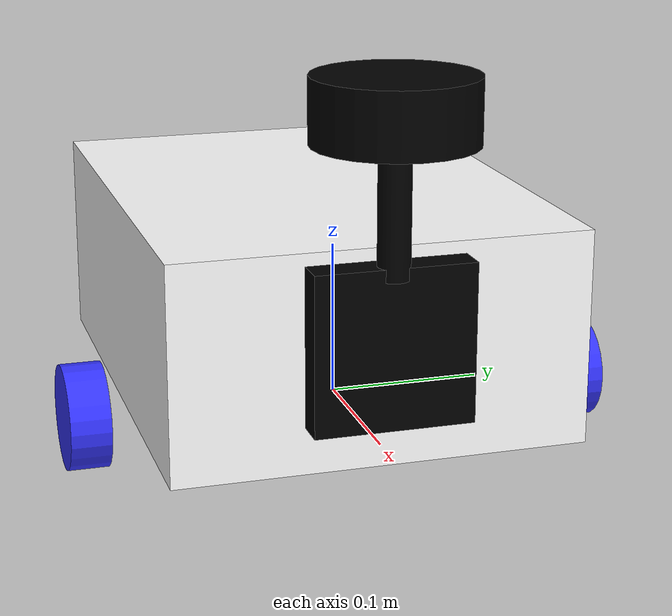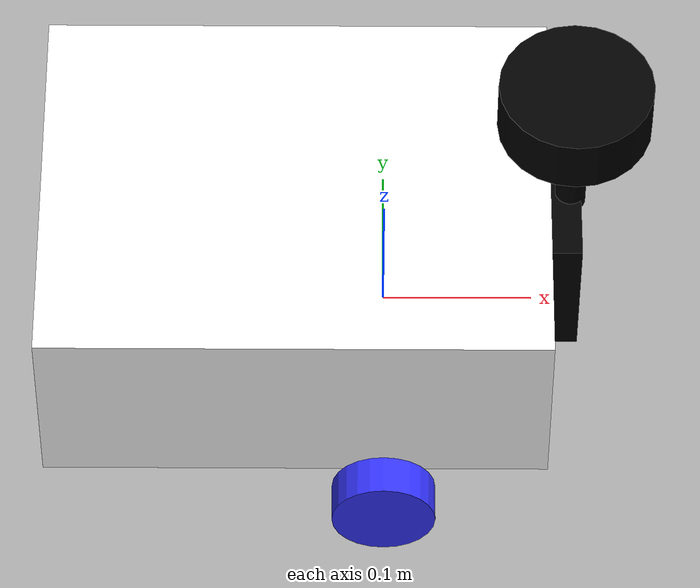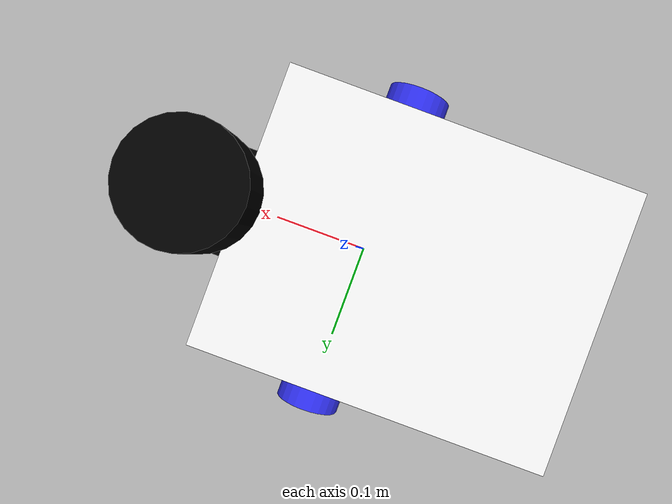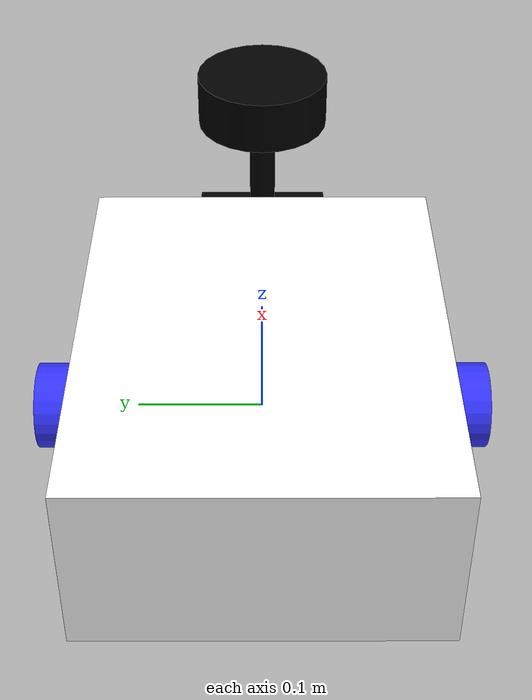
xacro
<?xml version="1.0"?>
<robot xmlns:xacro="http://www.ros.org/wiki/xacro" name ="my_bot" >

    <xacro:arg name="robot_namespace" default=""/>
    <xacro:arg name="wheel_odom_topic" default="odom" />
    <xacro:arg name="camera_enabled" default="false" />
    <xacro:arg name="stereo_camera_enabled" default="false" />
    <xacro:arg name="two_d_lidar_enabled" default="false" />
    <xacro:arg name="publish_wheel_odom_tf" default="true" />
    <xacro:arg name="conveyor_enabled" default="false"/>
    <xacro:arg name="ground_truth_frame" default="map"/>
    <xacro:arg name="sim_gazebo" default="false" />
    <xacro:arg name="sim_gz" default="false" />
    <xacro:arg name="odometry_source" default="world" />

    <xacro:property name="two_d_lidar_update_rate" value="30"/>
    <xacro:property name="two_d_lidar_sample_size" value="361"/>
    <xacro:property name="two_d_lidar_min_angle" value="0"/>
    <xacro:property name="two_d_lidar_max_angle" value="360"/>
    <xacro:property name="two_d_lidar_min_range" value="0.55"/>
    <xacro:property name="two_d_lidar_max_range" value="16"/>

    <xacro:property name="odometry_source" value="$(arg odometry_source)"/>

    <xacro:property name="chassis_length" value="0.335"/>
    <xacro:property name="chassis_width" value="0.265"/>
    <xacro:property name="chassis_height" value="0.138"/>
    <xacro:property name="chassis_mass" value="1.0"/>
    <xacro:property name="wheel_radius" value="0.034"/>
    <xacro:property name="wheel_thickness" value="0.026"/>
    <xacro:property name="wheel_mass" value="0.05"/>
    <xacro:property name="wheel_offset_x" value="0.226"/>
    <xacro:property name="wheel_offset_y" value="0.166"/>
    <xacro:property name="wheel_offset_z" value="0.01"/>
    <xacro:property name="caster_wheel_radius" value="0.01"/>
    <xacro:property name="caster_wheel_mass" value="0.01"/>
    <xacro:property name="caster_wheel_offset_x" value="0.075"/>
    <xacro:property name="caster_wheel_offset_z" value="${wheel_offset_z - wheel_radius + caster_wheel_radius}"/>

    <material name="white">
        <color rgba="1 1 1 1" />
    </material>

    <material name="orange">
        <color rgba="1 0.3 0.1 1"/>
    </material>

    <material name="blue">
        <color rgba="0.2 0.2 1 1"/>
    </material>

    <material name="black">
        <color rgba="0 0 0 1"/>
    </material>

    <material name="red">
        <color rgba="1 0 0 1"/>
    </material>

    <xacro:macro name="inertial_sphere" params="mass radius *origin">
        <inertial>
            <xacro:insert_block name="origin"/>
            <mass value="${mass}" />
            <inertia ixx="${(2/5) * mass * (radius*radius)}" ixy="0.0" ixz="0.0"
                    iyy="${(2/5) * mass * (radius*radius)}" iyz="0.0"
                    izz="${(2/5) * mass * (radius*radius)}" />
        </inertial>
    </xacro:macro>

    <xacro:macro name="inertial_box" params="mass x y z *origin">
        <inertial>
            <xacro:insert_block name="origin"/>
            <mass value="${mass}" />
            <inertia ixx="${(1/12) * mass * (y*y+z*z)}" ixy="0.0" ixz="0.0"
                    iyy="${(1/12) * mass * (x*x+z*z)}" iyz="0.0"
                    izz="${(1/12) * mass * (x*x+y*y)}" />
        </inertial>
    </xacro:macro>

    <xacro:macro name="inertial_cylinder" params="mass length radius *origin">
        <inertial>
            <xacro:insert_block name="origin"/>
            <mass value="${mass}" />
            <inertia ixx="${(1/12) * mass * (3*radius*radius + length*length)}" ixy="0.0" ixz="0.0"
                    iyy="${(1/12) * mass * (3*radius*radius + length*length)}" iyz="0.0"
                    izz="${(1/2) * mass * (radius*radius)}" />
        </inertial>
    </xacro:macro>

    <link name="base_footprint"/>

    <link name="base_link"/>

    <joint name="base_footprint_joint" type="fixed">
        <parent link="base_footprint"/>
        <child link="base_link"/>
        <origin xyz="0 0 0" rpy="0 0 0"/>
    </joint>

    <!-- CHASSIS LINK -->

    <joint name="chassis_joint" type="fixed">
        <parent link="base_link"/>
        <child link="chassis"/>
        <origin xyz="${-wheel_offset_x} 0 ${-wheel_offset_z}"/>
    </joint>

    <link name="chassis">
        <visual>
            <origin xyz="${chassis_length/2} 0 ${chassis_height/2}"/>
            <geometry>
                <box size="${chassis_length} ${chassis_width} ${chassis_height}"/>
            </geometry>
            <material name="white"/>
        </visual>
        <collision>
            <origin xyz="${chassis_length/2} 0 ${chassis_height/2}"/>
            <geometry>
                <box size="${chassis_length} ${chassis_width} ${chassis_height}"/>
            </geometry>
        </collision>
        <xacro:inertial_box mass="0.5" x="${chassis_length}" y="${chassis_width}" z="${chassis_height}">
            <origin xyz="${chassis_length/2} 0 ${chassis_height/2}" rpy="0 0 0"/>
        </xacro:inertial_box>
    </link>

    <gazebo reference="chassis">
        <material>Gazebo/White</material>
    </gazebo>

    <!-- LEFT WHEEL LINK -->

    <joint name="left_wheel_joint" type="continuous">
        <parent link="base_link"/>
        <child link="left_wheel"/>
        <origin xyz="0 ${wheel_offset_y} 0" rpy="-${pi/2} 0 0" />
        <axis xyz="0 0 1"/>
    </joint>

    <link name="left_wheel">
        <visual>
            <geometry>
                <cylinder radius="${wheel_radius}" length="${wheel_thickness}"/>
            </geometry>
            <material name="blue"/>
        </visual>
        <collision>
            <geometry>
                <sphere radius="${wheel_radius}"/>
            </geometry>
        </collision>
        <xacro:inertial_cylinder mass="${wheel_mass}" length="${wheel_thickness}" radius="${wheel_radius}">
            <origin xyz="0 0 0" rpy="0 0 0"/>
        </xacro:inertial_cylinder>
        <gazebo>
            <plugin filename="ignition-gazebo-joint-state-publisher-system" name="ignition::gazebo::systems::JointStatePublisher">
                <topic>/joint_states</topic>
                <joint_name>left_wheel_joint</joint_name>
            </plugin>
        </gazebo>
    </link>

    <gazebo reference="left_wheel">
        <material>Gazebo/Blue</material>
    </gazebo>

    <!-- RIGHT WHEEL LINK -->

    <joint name="right_wheel_joint" type="continuous">
        <parent link="base_link"/>
        <child link="right_wheel"/>
        <origin xyz="0 ${-wheel_offset_y} 0" rpy="${pi/2} 0 0" />
        <axis xyz="0 0 -1"/>
    </joint>

    <link name="right_wheel">
        <visual>
            <geometry>
                <cylinder radius="${wheel_radius}" length="${wheel_thickness}"/>
            </geometry>
            <material name="blue"/>
        </visual>
        <collision>
            <geometry>
                <sphere radius="${wheel_radius}"/>
            </geometry>
        </collision>
        <xacro:inertial_cylinder mass="${wheel_mass}" length="${wheel_thickness}" radius="${wheel_radius}">
            <origin xyz="0 0 0" rpy="0 0 0"/>
        </xacro:inertial_cylinder>
        <gazebo>
            <plugin filename="ignition-gazebo-joint-state-publisher-system" name="ignition::gazebo::systems::JointStatePublisher">
                <topic>/joint_states</topic>
                <joint_name>right_wheel_joint</joint_name>
            </plugin>
        </gazebo>
    </link>

    <gazebo reference="right_wheel">
        <material>Gazebo/Blue</material>
    </gazebo>

    <!-- CASTER WHEEL LINK -->

    <joint name="caster_wheel_joint" type="fixed">
        <parent link="chassis"/>
        <child link="caster_wheel"/>
        <origin xyz="${caster_wheel_offset_x} 0 ${caster_wheel_offset_z}"/>
    </joint>

    <link name="caster_wheel">
        <visual>
            <geometry>
                <sphere radius="${caster_wheel_radius}"/>
            </geometry>
            <material name="white"/>
        </visual>
        <collision>
            <geometry>
                <sphere radius="${caster_wheel_radius}"/>
            </geometry>
        </collision>
        <xacro:inertial_sphere mass="${caster_wheel_mass}" radius="${caster_wheel_radius}">
            <origin xyz="0 0 0" rpy="0 0 0"/>
        </xacro:inertial_sphere>
    </link>

    <gazebo reference="caster_wheel">
        <material>Gazebo/White</material>
        <mu1 value="0.001"/>
        <mu2 value="0.001"/>
    </gazebo>

    <gazebo>
        <plugin filename="ignition-gazebo-sensors-system" name="ignition::gazebo::systems::Sensors">
            <render_engine>ogre2</render_engine>
        </plugin>

        <plugin filename="ignition-gazebo-imu-system" name="ignition::gazebo::systems::Imu">
        </plugin>

        <plugin filename="ignition-gazebo-joint-state-publisher-system" name="ignition::gazebo::systems::JointStatePublisher">
        </plugin>

        <!-- ........................... DIFFERENTIAL DRIVE PLUGIN ................................... -->

        <plugin filename="ignition-gazebo-diff-drive-system" name="ignition::gazebo::systems::DiffDrive">
            <left_joint>left_wheel_joint</left_joint>
            <right_joint>right_wheel_joint</right_joint>
            <wheel_separation>0.35</wheel_separation>
            <wheel_radius>0.1</wheel_radius>
            <odom_publish_frequency>30</odom_publish_frequency>
            <topic>/cmd_vel</topic>
            <xacro:if value="${odometry_source == 'encoders'}">
                <odom_topic>$(arg wheel_odom_topic)</odom_topic>
                <tf_topic>/tf</tf_topic>
            </xacro:if>
            <frame_id>odom</frame_id>
            <child_frame_id>base_footprint</child_frame_id>
        </plugin>
    </gazebo>

    <xacro:if value="${odometry_source == 'world'}">
    <gazebo>
        <plugin filename="libignition-gazebo6-odometry-publisher-system"
            name="ignition::gazebo::systems::OdometryPublisher">
            <odom_frame>odom</odom_frame>
            <robot_base_frame>base_footprint</robot_base_frame>
            <odom_topic>$(arg wheel_odom_topic)</odom_topic>
            <tf_topic>/tf</tf_topic>
            <dimensions>2</dimensions>
            <odom_publish_frequency>10</odom_publish_frequency>
        </plugin>
    </gazebo>
    </xacro:if>

    <link name="two_d_lidar">
        <visual>
            <geometry>
                <cylinder radius="0.05" length="0.04"/>
            </geometry>
            <material name="black"/>
        </visual>
        <visual>
            <origin xyz="0 0 -0.05"/>
            <geometry>
                <cylinder radius="0.01" length="0.1"/>
            </geometry>
            <material name="black"/>
        </visual>
        <collision>
            <geometry>
                <cylinder radius="0.05" length="0.04"/>
            </geometry>
        </collision>
        <xacro:inertial_cylinder mass="0.1" length="0.04" radius="0.05">
            <origin xyz="0 0 0" rpy="0 0 0"/>
        </xacro:inertial_cylinder>
    </link>

    <joint name="two_d_lidar_joint" type="fixed">
        <parent link="base_link"/>
        <child link="two_d_lidar"/>
        <origin xyz="0.122 0 0.212" rpy="0 0 0"/>
    </joint>

    <gazebo reference="two_d_lidar">
            <material>Gazebo/White</material>
    </gazebo>

    <xacro:if value="$(arg two_d_lidar_enabled)">
        <gazebo reference="two_d_lidar">
            <plugin filename="ignition-gazebo-sensors-system" name="ignition::gazebo::systems::Sensors">
                <render_engine>ogre2</render_engine>
            </plugin>
            <sensor name='gpu_lidar' type='gpu_lidar'>
                <topic>scan</topic>
                <update_rate>${two_d_lidar_update_rate}</update_rate>
                <ignition_frame_id>two_d_lidar</ignition_frame_id>
                <lidar>
                    <scan>
                        <horizontal>
                            <samples>${two_d_lidar_sample_size}</samples>
                            <resolution>1</resolution>
                            <min_angle>${radians(two_d_lidar_min_angle)}</min_angle>
                            <max_angle>${radians(two_d_lidar_max_angle)}</max_angle>
                        </horizontal>
                    </scan>
                    <range>
                        <min>${two_d_lidar_min_range}</min>
                        <max>${two_d_lidar_max_range}</max>
                        <resolution>0.01</resolution>
                    </range>
                    <noise>
                        <type>gaussian</type>
                        <mean>0.0</mean>
                        <stddev>0.001</stddev>
                    </noise>
                </lidar>
                <alwaysOn>1</alwaysOn>
                <visualize>true</visualize>
            </sensor>
        </gazebo>
    </xacro:if>

    <gazebo reference="imu_frame">
        <sensor name="imu_sensor" type="imu">
            <always_on>1</always_on>
            <update_rate>1</update_rate>
            <ignition_frame_id>imu_frame</ignition_frame_id>
            <visualize>true</visualize>
            <topic>imu</topic>
        </sensor>
    </gazebo>

    <joint name="camera_joint" type="fixed">
        <parent link="chassis"/>
        <child link="camera_link"/>
        <origin xyz="0.305 0 0.08" rpy="0 0 0"/>
    </joint>

    <link name="camera_link">
        <visual>
            <geometry>
                <box size="0.010 0.03 0.03"/>
            </geometry>
            <material name="red"/>
        </visual>
    </link>

    <joint name="camera_optical_joint" type="fixed">
        <parent link="camera_link"/>
        <child link="camera_link_optical"/>
        <origin xyz="0 0 0" rpy="${-pi/2} 0 ${-pi/2}"/>
    </joint>

    <link name="camera_link_optical">
        <visual>
            <geometry>
                <box size="0.1 0.1 0.1"/>
            </geometry>
            <material name="black"/>
        </visual>
    </link>

    <xacro:if value="$(arg stereo_camera_enabled)">
        <gazebo reference="camera_link">
            <sensor type="camera" name="camera">
                <update_rate>10.0</update_rate>
                <always_on>true</always_on>
                <ignition_frame_id>stereo_camera_optical</ignition_frame_id>
                <pose>0 0 0 0 0 0</pose>
                <topic>stereo_camera/camera/image_raw</topic>
                <camera_info_topic>stereo_camera/camera/camera_info</camera_info_topic>
                <horizontal_fov>1.3962634</horizontal_fov>
                <image>
                    <width>640</width>
                    <height>480</height>
                    <format>R8G8B8</format>
                </image>
                <clip>
                    <near>0.05</near>
                    <far>8.0</far>
                </clip>
            </sensor>

        </gazebo>
    </xacro:if>

</robot>
